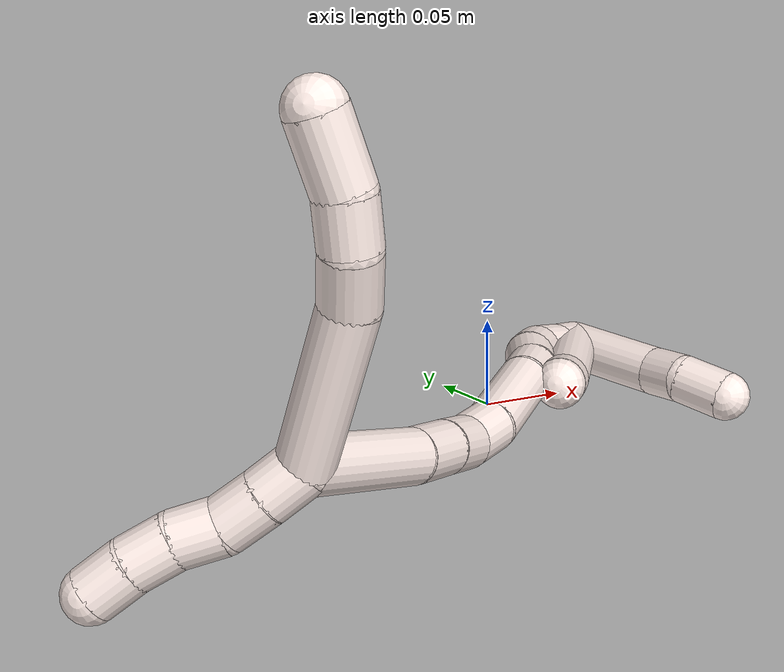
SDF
<sdf version="1.7">
 <world name="default">
  <model name="11">
   <static>0</static>
   <link name="11">
    <collision name="collision-cylinder-e_1_2_8">
     <pose>0.027183 0.019394 0.014281 -0.936083 0.845744 -0.447363</pose>
     <geometry><cylinder><radius>0.0125</radius><length>0.072636</length></cylinder></geometry>
     <surface>
      <friction><ode><mu>1.16</mu><mu2>1.16</mu2><slip1>0</slip1><slip2>0</slip2></ode></friction>
      <contact><ode><kp>1e+06</kp><kd>1</kd><max_vel>0</max_vel><min_depth>0.001</min_depth></ode></contact>
     </surface>
    </collision>
    <visual name="visual-cylinder-e_1_2_8">
     <pose>0.027183 0.019394 0.014281 -0.936083 0.845744 -0.447363</pose>
     <geometry><cylinder><radius>0.0125</radius><length>0.072636</length></cylinder></geometry>
     <material><ambient>1 0.933333 0.909804 1</ambient></material>
    </visual>
    <collision name="collision-cylinder-e_2_8_9">
     <pose>0.061435 0.046116 0.035583 -0.806756 0.608489 -0.266425</pose>
     <geometry><cylinder><radius>0.0125</radius><length>0.024735</length></cylinder></geometry>
     <surface>
      <friction><ode><mu>1.16</mu><mu2>1.16</mu2><slip1>0</slip1><slip2>0</slip2></ode></friction>
      <contact><ode><kp>1e+06</kp><kd>1</kd><max_vel>0</max_vel><min_depth>0.001</min_depth></ode></contact>
     </surface>
    </collision>
    <visual name="visual-cylinder-e_2_8_9">
     <pose>0.061435 0.046116 0.035583 -0.806756 0.608489 -0.266425</pose>
     <geometry><cylinder><radius>0.0125</radius><length>0.024735</length></cylinder></geometry>
     <material><ambient>1 0.933333 0.909804 1</ambient></material>
    </visual>
    <collision name="collision-cylinder-e_3_9_10">
     <pose>0.073723 0.061772 0.047117 -1.07422 0.503499 -0.303976</pose>
     <geometry><cylinder><radius>0.0125</radius><length>0.021631</length></cylinder></geometry>
     <surface>
      <friction><ode><mu>1.16</mu><mu2>1.16</mu2><slip1>0</slip1><slip2>0</slip2></ode></friction>
      <contact><ode><kp>1e+06</kp><kd>1</kd><max_vel>0</max_vel><min_depth>0.001</min_depth></ode></contact>
     </surface>
    </collision>
    <visual name="visual-cylinder-e_3_9_10">
     <pose>0.073723 0.061772 0.047117 -1.07422 0.503499 -0.303976</pose>
     <geometry><cylinder><radius>0.0125</radius><length>0.021631</length></cylinder></geometry>
     <material><ambient>1 0.933333 0.909804 1</ambient></material>
    </visual>
    <collision name="collision-cylinder-e_4_10_6">
     <pose>0.083134 0.083496 0.058205 -1.11446 0.273916 -0.171331</pose>
     <geometry><cylinder><radius>0.0125</radius><length>0.030998</length></cylinder></geometry>
     <surface>
      <friction><ode><mu>1.16</mu><mu2>1.16</mu2><slip1>0</slip1><slip2>0</slip2></ode></friction>
      <contact><ode><kp>1e+06</kp><kd>1</kd><max_vel>0</max_vel><min_depth>0.001</min_depth></ode></contact>
     </surface>
    </collision>
    <visual name="visual-cylinder-e_4_10_6">
     <pose>0.083134 0.083496 0.058205 -1.11446 0.273916 -0.171331</pose>
     <geometry><cylinder><radius>0.0125</radius><length>0.030998</length></cylinder></geometry>
     <material><ambient>1 0.933333 0.909804 1</ambient></material>
    </visual>
    <collision name="collision-cylinder-e_1_2_11">
     <pose>-0.009865 -0.001253 0.001053 0.871768 -1.40634 -0.752096</pose>
     <geometry><cylinder><radius>0.0125</radius><length>0.02</length></cylinder></geometry>
     <surface>
      <friction><ode><mu>1.16</mu><mu2>1.16</mu2><slip1>0</slip1><slip2>0</slip2></ode></friction>
      <contact><ode><kp>1e+06</kp><kd>1</kd><max_vel>0</max_vel><min_depth>0.001</min_depth></ode></contact>
     </surface>
    </collision>
    <visual name="visual-cylinder-e_1_2_11">
     <pose>-0.009865 -0.001253 0.001053 0.871768 -1.40634 -0.752096</pose>
     <geometry><cylinder><radius>0.0125</radius><length>0.02</length></cylinder></geometry>
     <material><ambient>1 0.933333 0.909804 1</ambient></material>
    </visual>
    <collision name="collision-cylinder-e_2_11_12">
     <pose>-0.029672 -0.00334 0.002793 0.882561 -1.46263 -0.801762</pose>
     <geometry><cylinder><radius>0.0125</radius><length>0.02</length></cylinder></geometry>
     <surface>
      <friction><ode><mu>1.16</mu><mu2>1.16</mu2><slip1>0</slip1><slip2>0</slip2></ode></friction>
      <contact><ode><kp>1e+06</kp><kd>1</kd><max_vel>0</max_vel><min_depth>0.001</min_depth></ode></contact>
     </surface>
    </collision>
    <visual name="visual-cylinder-e_2_11_12">
     <pose>-0.029672 -0.00334 0.002793 0.882561 -1.46263 -0.801762</pose>
     <geometry><cylinder><radius>0.0125</radius><length>0.02</length></cylinder></geometry>
     <material><ambient>1 0.933333 0.909804 1</ambient></material>
    </visual>
    <collision name="collision-cylinder-e_3_12_13">
     <pose>-0.04918 -0.002004 0.005418 -0.841293 -1.27546 0.640188</pose>
     <geometry><cylinder><radius>0.0125</radius><length>0.02</length></cylinder></geometry>
     <surface>
      <friction><ode><mu>1.16</mu><mu2>1.16</mu2><slip1>0</slip1><slip2>0</slip2></ode></friction>
      <contact><ode><kp>1e+06</kp><kd>1</kd><max_vel>0</max_vel><min_depth>0.001</min_depth></ode></contact>
     </surface>
    </collision>
    <visual name="visual-cylinder-e_3_12_13">
     <pose>-0.04918 -0.002004 0.005418 -0.841293 -1.27546 0.640188</pose>
     <geometry><cylinder><radius>0.0125</radius><length>0.02</length></cylinder></geometry>
     <material><ambient>1 0.933333 0.909804 1</ambient></material>
    </visual>
    <collision name="collision-cylinder-e_4_13_14">
     <pose>-0.068604 0.000224 0.009047 -0.034123 -1.40101 0.028771</pose>
     <geometry><cylinder><radius>0.0125</radius><length>0.02</length></cylinder></geometry>
     <surface>
      <friction><ode><mu>1.16</mu><mu2>1.16</mu2><slip1>0</slip1><slip2>0</slip2></ode></friction>
      <contact><ode><kp>1e+06</kp><kd>1</kd><max_vel>0</max_vel><min_depth>0.001</min_depth></ode></contact>
     </surface>
    </collision>
    <visual name="visual-cylinder-e_4_13_14">
     <pose>-0.068604 0.000224 0.009047 -0.034123 -1.40101 0.028771</pose>
     <geometry><cylinder><radius>0.0125</radius><length>0.02</length></cylinder></geometry>
     <material><ambient>1 0.933333 0.909804 1</ambient></material>
    </visual>
    <collision name="collision-cylinder-e_5_14_5">
     <pose>-0.088351 -0.000858 0.011671 0.883102 -1.42286 -0.773838</pose>
     <geometry><cylinder><radius>0.0125</radius><length>0.02</length></cylinder></geometry>
     <surface>
      <friction><ode><mu>1.16</mu><mu2>1.16</mu2><slip1>0</slip1><slip2>0</slip2></ode></friction>
      <contact><ode><kp>1e+06</kp><kd>1</kd><max_vel>0</max_vel><min_depth>0.001</min_depth></ode></contact>
     </surface>
    </collision>
    <visual name="visual-cylinder-e_5_14_5">
     <pose>-0.088351 -0.000858 0.011671 0.883102 -1.42286 -0.773838</pose>
     <geometry><cylinder><radius>0.0125</radius><length>0.02</length></cylinder></geometry>
     <material><ambient>1 0.933333 0.909804 1</ambient></material>
    </visual>
    <collision name="collision-cylinder-e_1_2_15">
     <pose>0.01069 -0.00642 -0.032705 2.94775 0.310368 2.02948</pose>
     <geometry><cylinder><radius>0.0125</radius><length>0.070003</length></cylinder></geometry>
     <surface>
      <friction><ode><mu>1.16</mu><mu2>1.16</mu2><slip1>0</slip1><slip2>0</slip2></ode></friction>
      <contact><ode><kp>1e+06</kp><kd>1</kd><max_vel>0</max_vel><min_depth>0.001</min_depth></ode></contact>
     </surface>
    </collision>
    <visual name="visual-cylinder-e_1_2_15">
     <pose>0.01069 -0.00642 -0.032705 2.94775 0.310368 2.02948</pose>
     <geometry><cylinder><radius>0.0125</radius><length>0.070003</length></cylinder></geometry>
     <material><ambient>1 0.933333 0.909804 1</ambient></material>
    </visual>
    <collision name="collision-cylinder-e_2_15_16">
     <pose>0.024802 -0.01364 -0.078681 3.08141 0.251944 2.67486</pose>
     <geometry><cylinder><radius>0.0125</radius><length>0.027457</length></cylinder></geometry>
     <surface>
      <friction><ode><mu>1.16</mu><mu2>1.16</mu2><slip1>0</slip1><slip2>0</slip2></ode></friction>
      <contact><ode><kp>1e+06</kp><kd>1</kd><max_vel>0</max_vel><min_depth>0.001</min_depth></ode></contact>
     </surface>
    </collision>
    <visual name="visual-cylinder-e_2_15_16">
     <pose>0.024802 -0.01364 -0.078681 3.08141 0.251944 2.67486</pose>
     <geometry><cylinder><radius>0.0125</radius><length>0.027457</length></cylinder></geometry>
     <material><ambient>1 0.933333 0.909804 1</ambient></material>
    </visual>
    <collision name="collision-cylinder-e_3_16_17">
     <pose>0.030173 -0.015025 -0.104095 3.09344 0.158994 2.55453</pose>
     <geometry><cylinder><radius>0.0125</radius><length>0.024624</length></cylinder></geometry>
     <surface>
      <friction><ode><mu>1.16</mu><mu2>1.16</mu2><slip1>0</slip1><slip2>0</slip2></ode></friction>
      <contact><ode><kp>1e+06</kp><kd>1</kd><max_vel>0</max_vel><min_depth>0.001</min_depth></ode></contact>
     </surface>
    </collision>
    <visual name="visual-cylinder-e_3_16_17">
     <pose>0.030173 -0.015025 -0.104095 3.09344 0.158994 2.55453</pose>
     <geometry><cylinder><radius>0.0125</radius><length>0.024624</length></cylinder></geometry>
     <material><ambient>1 0.933333 0.909804 1</ambient></material>
    </visual>
    <collision name="collision-cylinder-e_4_17_18">
     <pose>0.036704 -0.014573 -0.126474 -3.04071 0.418863 -2.67518</pose>
     <geometry><cylinder><radius>0.0125</radius><length>0.022526</length></cylinder></geometry>
     <surface>
      <friction><ode><mu>1.16</mu><mu2>1.16</mu2><slip1>0</slip1><slip2>0</slip2></ode></friction>
      <contact><ode><kp>1e+06</kp><kd>1</kd><max_vel>0</max_vel><min_depth>0.001</min_depth></ode></contact>
     </surface>
    </collision>
    <visual name="visual-cylinder-e_4_17_18">
     <pose>0.036704 -0.014573 -0.126474 -3.04071 0.418863 -2.67518</pose>
     <geometry><cylinder><radius>0.0125</radius><length>0.022526</length></cylinder></geometry>
     <material><ambient>1 0.933333 0.909804 1</ambient></material>
    </visual>
    <collision name="collision-cylinder-e_5_18_19">
     <pose>0.049008 -0.006459 -0.159882 -2.84513 0.308581 -1.61147</pose>
     <geometry><cylinder><radius>0.0125</radius><length>0.050857</length></cylinder></geometry>
     <surface>
      <friction><ode><mu>1.16</mu><mu2>1.16</mu2><slip1>0</slip1><slip2>0</slip2></ode></friction>
      <contact><ode><kp>1e+06</kp><kd>1</kd><max_vel>0</max_vel><min_depth>0.001</min_depth></ode></contact>
     </surface>
    </collision>
    <visual name="visual-cylinder-e_5_18_19">
     <pose>0.049008 -0.006459 -0.159882 -2.84513 0.308581 -1.61147</pose>
     <geometry><cylinder><radius>0.0125</radius><length>0.050857</length></cylinder></geometry>
     <material><ambient>1 0.933333 0.909804 1</ambient></material>
    </visual>
    <collision name="collision-cylinder-e_6_19_20">
     <pose>0.058195 0.003099 -0.193367 -2.90559 0.137192 -1.05044</pose>
     <geometry><cylinder><radius>0.0125</radius><length>0.021418</length></cylinder></geometry>
     <surface>
      <friction><ode><mu>1.16</mu><mu2>1.16</mu2><slip1>0</slip1><slip2>0</slip2></ode></friction>
      <contact><ode><kp>1e+06</kp><kd>1</kd><max_vel>0</max_vel><min_depth>0.001</min_depth></ode></contact>
     </surface>
    </collision>
    <visual name="visual-cylinder-e_6_19_20">
     <pose>0.058195 0.003099 -0.193367 -2.90559 0.137192 -1.05044</pose>
     <geometry><cylinder><radius>0.0125</radius><length>0.021418</length></cylinder></geometry>
     <material><ambient>1 0.933333 0.909804 1</ambient></material>
    </visual>
    <collision name="collision-cylinder-e_7_20_21">
     <pose>0.058923 0.009449 -0.213208 -2.75571 -0.071517 0.362196</pose>
     <geometry><cylinder><radius>0.0125</radius><length>0.020618</length></cylinder></geometry>
     <surface>
      <friction><ode><mu>1.16</mu><mu2>1.16</mu2><slip1>0</slip1><slip2>0</slip2></ode></friction>
      <contact><ode><kp>1e+06</kp><kd>1</kd><max_vel>0</max_vel><min_depth>0.001</min_depth></ode></contact>
     </surface>
    </collision>
    <visual name="visual-cylinder-e_7_20_21">
     <pose>0.058923 0.009449 -0.213208 -2.75571 -0.071517 0.362196</pose>
     <geometry><cylinder><radius>0.0125</radius><length>0.020618</length></cylinder></geometry>
     <material><ambient>1 0.933333 0.909804 1</ambient></material>
    </visual>
    <collision name="collision-cylinder-e_8_21_22">
     <pose>0.058914 0.014663 -0.233068 -3.01229 0.069707 -0.988046</pose>
     <geometry><cylinder><radius>0.0125</radius><length>0.020892</length></cylinder></geometry>
     <surface>
      <friction><ode><mu>1.16</mu><mu2>1.16</mu2><slip1>0</slip1><slip2>0</slip2></ode></friction>
      <contact><ode><kp>1e+06</kp><kd>1</kd><max_vel>0</max_vel><min_depth>0.001</min_depth></ode></contact>
     </surface>
    </collision>
    <visual name="visual-cylinder-e_8_21_22">
     <pose>0.058914 0.014663 -0.233068 -3.01229 0.069707 -0.988046</pose>
     <geometry><cylinder><radius>0.0125</radius><length>0.020892</length></cylinder></geometry>
     <material><ambient>1 0.933333 0.909804 1</ambient></material>
    </visual>
    <collision name="collision-cylinder-e_9_22_23">
     <pose>0.06259 0.014778 -0.252988 3.01411 0.296092 2.33279</pose>
     <geometry><cylinder><radius>0.0125</radius><length>0.020209</length></cylinder></geometry>
     <surface>
      <friction><ode><mu>1.16</mu><mu2>1.16</mu2><slip1>0</slip1><slip2>0</slip2></ode></friction>
      <contact><ode><kp>1e+06</kp><kd>1</kd><max_vel>0</max_vel><min_depth>0.001</min_depth></ode></contact>
     </surface>
    </collision>
    <visual name="visual-cylinder-e_9_22_23">
     <pose>0.06259 0.014778 -0.252988 3.01411 0.296092 2.33279</pose>
     <geometry><cylinder><radius>0.0125</radius><length>0.020209</length></cylinder></geometry>
     <material><ambient>1 0.933333 0.909804 1</ambient></material>
    </visual>
    <collision name="collision-cylinder-e_10_23_1">
     <pose>0.068478 0.012729 -0.272828 3.06179 0.278363 2.58636</pose>
     <geometry><cylinder><radius>0.0125</radius><length>0.021396</length></cylinder></geometry>
     <surface>
      <friction><ode><mu>1.16</mu><mu2>1.16</mu2><slip1>0</slip1><slip2>0</slip2></ode></friction>
      <contact><ode><kp>1e+06</kp><kd>1</kd><max_vel>0</max_vel><min_depth>0.001</min_depth></ode></contact>
     </surface>
    </collision>
    <visual name="visual-cylinder-e_10_23_1">
     <pose>0.068478 0.012729 -0.272828 3.06179 0.278363 2.58636</pose>
     <geometry><cylinder><radius>0.0125</radius><length>0.021396</length></cylinder></geometry>
     <material><ambient>1 0.933333 0.909804 1</ambient></material>
    </visual>
    <collision name="collision-cylinder-e_1_1_24">
     <pose>0.070772 0.002507 -0.245419 0.24466 -0.016627 -0.002044</pose>
     <geometry><cylinder><radius>0.0125</radius><length>0.077647</length></cylinder></geometry>
     <surface>
      <friction><ode><mu>1.16</mu><mu2>1.16</mu2><slip1>0</slip1><slip2>0</slip2></ode></friction>
      <contact><ode><kp>1e+06</kp><kd>1</kd><max_vel>0</max_vel><min_depth>0.001</min_depth></ode></contact>
     </surface>
    </collision>
    <visual name="visual-cylinder-e_1_1_24">
     <pose>0.070772 0.002507 -0.245419 0.24466 -0.016627 -0.002044</pose>
     <geometry><cylinder><radius>0.0125</radius><length>0.077647</length></cylinder></geometry>
     <material><ambient>1 0.933333 0.909804 1</ambient></material>
    </visual>
    <collision name="collision-cylinder-e_2_24_4">
     <pose>0.070628 -0.00821 -0.196669 0.117945 0.044898 0.002651</pose>
     <geometry><cylinder><radius>0.0125</radius><length>0.022353</length></cylinder></geometry>
     <surface>
      <friction><ode><mu>1.16</mu><mu2>1.16</mu2><slip1>0</slip1><slip2>0</slip2></ode></friction>
      <contact><ode><kp>1e+06</kp><kd>1</kd><max_vel>0</max_vel><min_depth>0.001</min_depth></ode></contact>
     </surface>
    </collision>
    <visual name="visual-cylinder-e_2_24_4">
     <pose>0.070628 -0.00821 -0.196669 0.117945 0.044898 0.002651</pose>
     <geometry><cylinder><radius>0.0125</radius><length>0.022353</length></cylinder></geometry>
     <material><ambient>1 0.933333 0.909804 1</ambient></material>
    </visual>
    <collision name="collision-cylinder-e_1_1_25">
     <pose>0.088436 -0.005968 -0.27145 0.994017 0.673511 0.375326</pose>
     <geometry><cylinder><radius>0.0125</radius><length>0.054571</length></cylinder></geometry>
     <surface>
      <friction><ode><mu>1.16</mu><mu2>1.16</mu2><slip1>0</slip1><slip2>0</slip2></ode></friction>
      <contact><ode><kp>1e+06</kp><kd>1</kd><max_vel>0</max_vel><min_depth>0.001</min_depth></ode></contact>
     </surface>
    </collision>
    <visual name="visual-cylinder-e_1_1_25">
     <pose>0.088436 -0.005968 -0.27145 0.994017 0.673511 0.375326</pose>
     <geometry><cylinder><radius>0.0125</radius><length>0.054571</length></cylinder></geometry>
     <material><ambient>1 0.933333 0.909804 1</ambient></material>
    </visual>
    <collision name="collision-cylinder-e_2_25_26">
     <pose>0.111569 -0.029572 -0.253822 0.762231 0.635313 0.261988</pose>
     <geometry><cylinder><radius>0.0125</radius><length>0.020606</length></cylinder></geometry>
     <surface>
      <friction><ode><mu>1.16</mu><mu2>1.16</mu2><slip1>0</slip1><slip2>0</slip2></ode></friction>
      <contact><ode><kp>1e+06</kp><kd>1</kd><max_vel>0</max_vel><min_depth>0.001</min_depth></ode></contact>
     </surface>
    </collision>
    <visual name="visual-cylinder-e_2_25_26">
     <pose>0.111569 -0.029572 -0.253822 0.762231 0.635313 0.261988</pose>
     <geometry><cylinder><radius>0.0125</radius><length>0.020606</length></cylinder></geometry>
     <material><ambient>1 0.933333 0.909804 1</ambient></material>
    </visual>
    <collision name="collision-cylinder-e_3_26_3">
     <pose>0.125159 -0.044483 -0.24411 1.18654 0.646389 0.444246</pose>
     <geometry><cylinder><radius>0.0125</radius><length>0.024822</length></cylinder></geometry>
     <surface>
      <friction><ode><mu>1.16</mu><mu2>1.16</mu2><slip1>0</slip1><slip2>0</slip2></ode></friction>
      <contact><ode><kp>1e+06</kp><kd>1</kd><max_vel>0</max_vel><min_depth>0.001</min_depth></ode></contact>
     </surface>
    </collision>
    <visual name="visual-cylinder-e_3_26_3">
     <pose>0.125159 -0.044483 -0.24411 1.18654 0.646389 0.444246</pose>
     <geometry><cylinder><radius>0.0125</radius><length>0.024822</length></cylinder></geometry>
     <material><ambient>1 0.933333 0.909804 1</ambient></material>
    </visual>
    <collision name="collision-sphere-3">
     <pose>0.132634 -0.053668 -0.240396 0 -0 0</pose>
     <geometry><sphere><radius>0.0125</radius></sphere></geometry>
     <surface>
      <friction><ode><mu>1.16</mu><mu2>1.16</mu2><slip1>0</slip1><slip2>0</slip2></ode></friction>
      <contact><ode><kp>1e+06</kp><kd>1</kd><max_vel>0</max_vel><min_depth>0.001</min_depth></ode></contact>
     </surface>
    </collision>
    <visual name="visual-sphere-3">
     <pose>0.132634 -0.053668 -0.240396 0 -0 0</pose>
     <geometry><sphere><radius>0.0125</radius></sphere></geometry>
     <material><ambient>1 0.933333 0.909804 1</ambient></material>
    </visual>
    <collision name="collision-sphere-26">
     <pose>0.117684 -0.035298 -0.247823 0 -0 0</pose>
     <geometry><sphere><radius>0.0125</radius></sphere></geometry>
     <surface>
      <friction><ode><mu>1.16</mu><mu2>1.16</mu2><slip1>0</slip1><slip2>0</slip2></ode></friction>
      <contact><ode><kp>1e+06</kp><kd>1</kd><max_vel>0</max_vel><min_depth>0.001</min_depth></ode></contact>
     </surface>
    </collision>
    <visual name="visual-sphere-26">
     <pose>0.117684 -0.035298 -0.247823 0 -0 0</pose>
     <geometry><sphere><radius>0.0125</radius></sphere></geometry>
     <material><ambient>1 0.933333 0.909804 1</ambient></material>
    </visual>
    <collision name="collision-sphere-25">
     <pose>0.105455 -0.023845 -0.25982 0 -0 0</pose>
     <geometry><sphere><radius>0.0125</radius></sphere></geometry>
     <surface>
      <friction><ode><mu>1.16</mu><mu2>1.16</mu2><slip1>0</slip1><slip2>0</slip2></ode></friction>
      <contact><ode><kp>1e+06</kp><kd>1</kd><max_vel>0</max_vel><min_depth>0.001</min_depth></ode></contact>
     </surface>
    </collision>
    <visual name="visual-sphere-25">
     <pose>0.105455 -0.023845 -0.25982 0 -0 0</pose>
     <geometry><sphere><radius>0.0125</radius></sphere></geometry>
     <material><ambient>1 0.933333 0.909804 1</ambient></material>
    </visual>
    <collision name="collision-sphere-4">
     <pose>0.07113 -0.009524 -0.185581 0 -0 0</pose>
     <geometry><sphere><radius>0.0125</radius></sphere></geometry>
     <surface>
      <friction><ode><mu>1.16</mu><mu2>1.16</mu2><slip1>0</slip1><slip2>0</slip2></ode></friction>
      <contact><ode><kp>1e+06</kp><kd>1</kd><max_vel>0</max_vel><min_depth>0.001</min_depth></ode></contact>
     </surface>
    </collision>
    <visual name="visual-sphere-4">
     <pose>0.07113 -0.009524 -0.185581 0 -0 0</pose>
     <geometry><sphere><radius>0.0125</radius></sphere></geometry>
     <material><ambient>1 0.933333 0.909804 1</ambient></material>
    </visual>
    <collision name="collision-sphere-24">
     <pose>0.070126 -0.006896 -0.207757 0 -0 0</pose>
     <geometry><sphere><radius>0.0125</radius></sphere></geometry>
     <surface>
      <friction><ode><mu>1.16</mu><mu2>1.16</mu2><slip1>0</slip1><slip2>0</slip2></ode></friction>
      <contact><ode><kp>1e+06</kp><kd>1</kd><max_vel>0</max_vel><min_depth>0.001</min_depth></ode></contact>
     </surface>
    </collision>
    <visual name="visual-sphere-24">
     <pose>0.070126 -0.006896 -0.207757 0 -0 0</pose>
     <geometry><sphere><radius>0.0125</radius></sphere></geometry>
     <material><ambient>1 0.933333 0.909804 1</ambient></material>
    </visual>
    <collision name="collision-sphere-1">
     <pose>0.071417 0.011909 -0.283081 0 -0 0</pose>
     <geometry><sphere><radius>0.0125</radius></sphere></geometry>
     <surface>
      <friction><ode><mu>1.16</mu><mu2>1.16</mu2><slip1>0</slip1><slip2>0</slip2></ode></friction>
      <contact><ode><kp>1e+06</kp><kd>1</kd><max_vel>0</max_vel><min_depth>0.001</min_depth></ode></contact>
     </surface>
    </collision>
    <visual name="visual-sphere-1">
     <pose>0.071417 0.011909 -0.283081 0 -0 0</pose>
     <geometry><sphere><radius>0.0125</radius></sphere></geometry>
     <material><ambient>1 0.933333 0.909804 1</ambient></material>
    </visual>
    <collision name="collision-sphere-23">
     <pose>0.065538 0.013549 -0.262574 0 -0 0</pose>
     <geometry><sphere><radius>0.0125</radius></sphere></geometry>
     <surface>
      <friction><ode><mu>1.16</mu><mu2>1.16</mu2><slip1>0</slip1><slip2>0</slip2></ode></friction>
      <contact><ode><kp>1e+06</kp><kd>1</kd><max_vel>0</max_vel><min_depth>0.001</min_depth></ode></contact>
     </surface>
    </collision>
    <visual name="visual-sphere-23">
     <pose>0.065538 0.013549 -0.262574 0 -0 0</pose>
     <geometry><sphere><radius>0.0125</radius></sphere></geometry>
     <material><ambient>1 0.933333 0.909804 1</ambient></material>
    </visual>
    <collision name="collision-sphere-22">
     <pose>0.059641 0.016007 -0.243401 0 -0 0</pose>
     <geometry><sphere><radius>0.0125</radius></sphere></geometry>
     <surface>
      <friction><ode><mu>1.16</mu><mu2>1.16</mu2><slip1>0</slip1><slip2>0</slip2></ode></friction>
      <contact><ode><kp>1e+06</kp><kd>1</kd><max_vel>0</max_vel><min_depth>0.001</min_depth></ode></contact>
     </surface>
    </collision>
    <visual name="visual-sphere-22">
     <pose>0.059641 0.016007 -0.243401 0 -0 0</pose>
     <geometry><sphere><radius>0.0125</radius></sphere></geometry>
     <material><ambient>1 0.933333 0.909804 1</ambient></material>
    </visual>
    <collision name="collision-sphere-21">
     <pose>0.058186 0.01332 -0.222734 0 -0 0</pose>
     <geometry><sphere><radius>0.0125</radius></sphere></geometry>
     <surface>
      <friction><ode><mu>1.16</mu><mu2>1.16</mu2><slip1>0</slip1><slip2>0</slip2></ode></friction>
      <contact><ode><kp>1e+06</kp><kd>1</kd><max_vel>0</max_vel><min_depth>0.001</min_depth></ode></contact>
     </surface>
    </collision>
    <visual name="visual-sphere-21">
     <pose>0.058186 0.01332 -0.222734 0 -0 0</pose>
     <geometry><sphere><radius>0.0125</radius></sphere></geometry>
     <material><ambient>1 0.933333 0.909804 1</ambient></material>
    </visual>
    <collision name="collision-sphere-11">
     <pose>-0.01973 -0.002506 0.002107 0 -0 0</pose>
     <geometry><sphere><radius>0.0125</radius></sphere></geometry>
     <surface>
      <friction><ode><mu>1.16</mu><mu2>1.16</mu2><slip1>0</slip1><slip2>0</slip2></ode></friction>
      <contact><ode><kp>1e+06</kp><kd>1</kd><max_vel>0</max_vel><min_depth>0.001</min_depth></ode></contact>
     </surface>
    </collision>
    <visual name="visual-sphere-11">
     <pose>-0.01973 -0.002506 0.002107 0 -0 0</pose>
     <geometry><sphere><radius>0.0125</radius></sphere></geometry>
     <material><ambient>1 0.933333 0.909804 1</ambient></material>
    </visual>
    <collision name="collision-sphere-6">
     <pose>0.087326 0.09689 0.064781 0 -0 0</pose>
     <geometry><sphere><radius>0.0125</radius></sphere></geometry>
     <surface>
      <friction><ode><mu>1.16</mu><mu2>1.16</mu2><slip1>0</slip1><slip2>0</slip2></ode></friction>
      <contact><ode><kp>1e+06</kp><kd>1</kd><max_vel>0</max_vel><min_depth>0.001</min_depth></ode></contact>
     </surface>
    </collision>
    <visual name="visual-sphere-6">
     <pose>0.087326 0.09689 0.064781 0 -0 0</pose>
     <geometry><sphere><radius>0.0125</radius></sphere></geometry>
     <material><ambient>1 0.933333 0.909804 1</ambient></material>
    </visual>
    <collision name="collision-sphere-10">
     <pose>0.078941 0.070101 0.05163 0 -0 0</pose>
     <geometry><sphere><radius>0.0125</radius></sphere></geometry>
     <surface>
      <friction><ode><mu>1.16</mu><mu2>1.16</mu2><slip1>0</slip1><slip2>0</slip2></ode></friction>
      <contact><ode><kp>1e+06</kp><kd>1</kd><max_vel>0</max_vel><min_depth>0.001</min_depth></ode></contact>
     </surface>
    </collision>
    <visual name="visual-sphere-10">
     <pose>0.078941 0.070101 0.05163 0 -0 0</pose>
     <geometry><sphere><radius>0.0125</radius></sphere></geometry>
     <material><ambient>1 0.933333 0.909804 1</ambient></material>
    </visual>
    <collision name="collision-sphere-9">
     <pose>0.068505 0.053443 0.042604 0 -0 0</pose>
     <geometry><sphere><radius>0.0125</radius></sphere></geometry>
     <surface>
      <friction><ode><mu>1.16</mu><mu2>1.16</mu2><slip1>0</slip1><slip2>0</slip2></ode></friction>
      <contact><ode><kp>1e+06</kp><kd>1</kd><max_vel>0</max_vel><min_depth>0.001</min_depth></ode></contact>
     </surface>
    </collision>
    <visual name="visual-sphere-9">
     <pose>0.068505 0.053443 0.042604 0 -0 0</pose>
     <geometry><sphere><radius>0.0125</radius></sphere></geometry>
     <material><ambient>1 0.933333 0.909804 1</ambient></material>
    </visual>
    <collision name="collision-sphere-2">
     <geometry><sphere><radius>0.0125</radius></sphere></geometry>
     <surface>
      <friction><ode><mu>1.16</mu><mu2>1.16</mu2><slip1>0</slip1><slip2>0</slip2></ode></friction>
      <contact><ode><kp>1e+06</kp><kd>1</kd><max_vel>0</max_vel><min_depth>0.001</min_depth></ode></contact>
     </surface>
    </collision>
    <visual name="visual-sphere-2">
     <geometry><sphere><radius>0.0125</radius></sphere></geometry>
     <material><ambient>1 0.933333 0.909804 1</ambient></material>
    </visual>
    <collision name="collision-sphere-19">
     <pose>0.05673 0.000618 -0.183053 0 -0 0</pose>
     <geometry><sphere><radius>0.0125</radius></sphere></geometry>
     <surface>
      <friction><ode><mu>1.16</mu><mu2>1.16</mu2><slip1>0</slip1><slip2>0</slip2></ode></friction>
      <contact><ode><kp>1e+06</kp><kd>1</kd><max_vel>0</max_vel><min_depth>0.001</min_depth></ode></contact>
     </surface>
    </collision>
    <visual name="visual-sphere-19">
     <pose>0.05673 0.000618 -0.183053 0 -0 0</pose>
     <geometry><sphere><radius>0.0125</radius></sphere></geometry>
     <material><ambient>1 0.933333 0.909804 1</ambient></material>
    </visual>
    <collision name="collision-sphere-8">
     <pose>0.054365 0.038789 0.028562 0 -0 0</pose>
     <geometry><sphere><radius>0.0125</radius></sphere></geometry>
     <surface>
      <friction><ode><mu>1.16</mu><mu2>1.16</mu2><slip1>0</slip1><slip2>0</slip2></ode></friction>
      <contact><ode><kp>1e+06</kp><kd>1</kd><max_vel>0</max_vel><min_depth>0.001</min_depth></ode></contact>
     </surface>
    </collision>
    <visual name="visual-sphere-8">
     <pose>0.054365 0.038789 0.028562 0 -0 0</pose>
     <geometry><sphere><radius>0.0125</radius></sphere></geometry>
     <material><ambient>1 0.933333 0.909804 1</ambient></material>
    </visual>
    <collision name="collision-sphere-12">
     <pose>-0.039613 -0.004174 0.003478 0 -0 0</pose>
     <geometry><sphere><radius>0.0125</radius></sphere></geometry>
     <surface>
      <friction><ode><mu>1.16</mu><mu2>1.16</mu2><slip1>0</slip1><slip2>0</slip2></ode></friction>
      <contact><ode><kp>1e+06</kp><kd>1</kd><max_vel>0</max_vel><min_depth>0.001</min_depth></ode></contact>
     </surface>
    </collision>
    <visual name="visual-sphere-12">
     <pose>-0.039613 -0.004174 0.003478 0 -0 0</pose>
     <geometry><sphere><radius>0.0125</radius></sphere></geometry>
     <material><ambient>1 0.933333 0.909804 1</ambient></material>
    </visual>
    <collision name="collision-sphere-13">
     <pose>-0.058747 0.000166 0.007358 0 -0 0</pose>
     <geometry><sphere><radius>0.0125</radius></sphere></geometry>
     <surface>
      <friction><ode><mu>1.16</mu><mu2>1.16</mu2><slip1>0</slip1><slip2>0</slip2></ode></friction>
      <contact><ode><kp>1e+06</kp><kd>1</kd><max_vel>0</max_vel><min_depth>0.001</min_depth></ode></contact>
     </surface>
    </collision>
    <visual name="visual-sphere-13">
     <pose>-0.058747 0.000166 0.007358 0 -0 0</pose>
     <geometry><sphere><radius>0.0125</radius></sphere></geometry>
     <material><ambient>1 0.933333 0.909804 1</ambient></material>
    </visual>
    <collision name="collision-sphere-14">
     <pose>-0.07846 0.000281 0.010736 0 -0 0</pose>
     <geometry><sphere><radius>0.0125</radius></sphere></geometry>
     <surface>
      <friction><ode><mu>1.16</mu><mu2>1.16</mu2><slip1>0</slip1><slip2>0</slip2></ode></friction>
      <contact><ode><kp>1e+06</kp><kd>1</kd><max_vel>0</max_vel><min_depth>0.001</min_depth></ode></contact>
     </surface>
    </collision>
    <visual name="visual-sphere-14">
     <pose>-0.07846 0.000281 0.010736 0 -0 0</pose>
     <geometry><sphere><radius>0.0125</radius></sphere></geometry>
     <material><ambient>1 0.933333 0.909804 1</ambient></material>
    </visual>
    <collision name="collision-sphere-5">
     <pose>-0.098241 -0.001997 0.012607 0 -0 0</pose>
     <geometry><sphere><radius>0.0125</radius></sphere></geometry>
     <surface>
      <friction><ode><mu>1.16</mu><mu2>1.16</mu2><slip1>0</slip1><slip2>0</slip2></ode></friction>
      <contact><ode><kp>1e+06</kp><kd>1</kd><max_vel>0</max_vel><min_depth>0.001</min_depth></ode></contact>
     </surface>
    </collision>
    <visual name="visual-sphere-5">
     <pose>-0.098241 -0.001997 0.012607 0 -0 0</pose>
     <geometry><sphere><radius>0.0125</radius></sphere></geometry>
     <material><ambient>1 0.933333 0.909804 1</ambient></material>
    </visual>
    <collision name="collision-sphere-15">
     <pose>0.021379 -0.01284 -0.06541 0 -0 0</pose>
     <geometry><sphere><radius>0.0125</radius></sphere></geometry>
     <surface>
      <friction><ode><mu>1.16</mu><mu2>1.16</mu2><slip1>0</slip1><slip2>0</slip2></ode></friction>
      <contact><ode><kp>1e+06</kp><kd>1</kd><max_vel>0</max_vel><min_depth>0.001</min_depth></ode></contact>
     </surface>
    </collision>
    <visual name="visual-sphere-15">
     <pose>0.021379 -0.01284 -0.06541 0 -0 0</pose>
     <geometry><sphere><radius>0.0125</radius></sphere></geometry>
     <material><ambient>1 0.933333 0.909804 1</ambient></material>
    </visual>
    <collision name="collision-sphere-16">
     <pose>0.028224 -0.01444 -0.091952 0 -0 0</pose>
     <geometry><sphere><radius>0.0125</radius></sphere></geometry>
     <surface>
      <friction><ode><mu>1.16</mu><mu2>1.16</mu2><slip1>0</slip1><slip2>0</slip2></ode></friction>
      <contact><ode><kp>1e+06</kp><kd>1</kd><max_vel>0</max_vel><min_depth>0.001</min_depth></ode></contact>
     </surface>
    </collision>
    <visual name="visual-sphere-16">
     <pose>0.028224 -0.01444 -0.091952 0 -0 0</pose>
     <geometry><sphere><radius>0.0125</radius></sphere></geometry>
     <material><ambient>1 0.933333 0.909804 1</ambient></material>
    </visual>
    <collision name="collision-sphere-17">
     <pose>0.032123 -0.01561 -0.116237 0 -0 0</pose>
     <geometry><sphere><radius>0.0125</radius></sphere></geometry>
     <surface>
      <friction><ode><mu>1.16</mu><mu2>1.16</mu2><slip1>0</slip1><slip2>0</slip2></ode></friction>
      <contact><ode><kp>1e+06</kp><kd>1</kd><max_vel>0</max_vel><min_depth>0.001</min_depth></ode></contact>
     </surface>
    </collision>
    <visual name="visual-sphere-17">
     <pose>0.032123 -0.01561 -0.116237 0 -0 0</pose>
     <geometry><sphere><radius>0.0125</radius></sphere></geometry>
     <material><ambient>1 0.933333 0.909804 1</ambient></material>
    </visual>
    <collision name="collision-sphere-18">
     <pose>0.041285 -0.013537 -0.136711 0 -0 0</pose>
     <geometry><sphere><radius>0.0125</radius></sphere></geometry>
     <surface>
      <friction><ode><mu>1.16</mu><mu2>1.16</mu2><slip1>0</slip1><slip2>0</slip2></ode></friction>
      <contact><ode><kp>1e+06</kp><kd>1</kd><max_vel>0</max_vel><min_depth>0.001</min_depth></ode></contact>
     </surface>
    </collision>
    <visual name="visual-sphere-18">
     <pose>0.041285 -0.013537 -0.136711 0 -0 0</pose>
     <geometry><sphere><radius>0.0125</radius></sphere></geometry>
     <material><ambient>1 0.933333 0.909804 1</ambient></material>
    </visual>
    <collision name="collision-sphere-20">
     <pose>0.05966 0.005579 -0.203681 0 -0 0</pose>
     <geometry><sphere><radius>0.0125</radius></sphere></geometry>
     <surface>
      <friction><ode><mu>1.16</mu><mu2>1.16</mu2><slip1>0</slip1><slip2>0</slip2></ode></friction>
      <contact><ode><kp>1e+06</kp><kd>1</kd><max_vel>0</max_vel><min_depth>0.001</min_depth></ode></contact>
     </surface>
    </collision>
    <visual name="visual-sphere-20">
     <pose>0.05966 0.005579 -0.203681 0 -0 0</pose>
     <geometry><sphere><radius>0.0125</radius></sphere></geometry>
     <material><ambient>1 0.933333 0.909804 1</ambient></material>
    </visual>
    <inertial>
     <pose>0.042629 0.004785 -0.115419 0 -0 0</pose>
     <mass>0.75</mass>
     <inertia>
      <ixx>8.7e-05</ixx>
      <ixy>0</ixy>
      <ixz>0</ixz>
      <iyy>0.000129</iyy>
      <iyz>0</iyz>
      <izz>-5.5e-05</izz>
     </inertia>
    </inertial>
   </link>
   <pose>-0.234242 -0.240003 0.063144 1.31398 -0.566219 -0.651842</pose>
  </model>
 </world>
</sdf>
